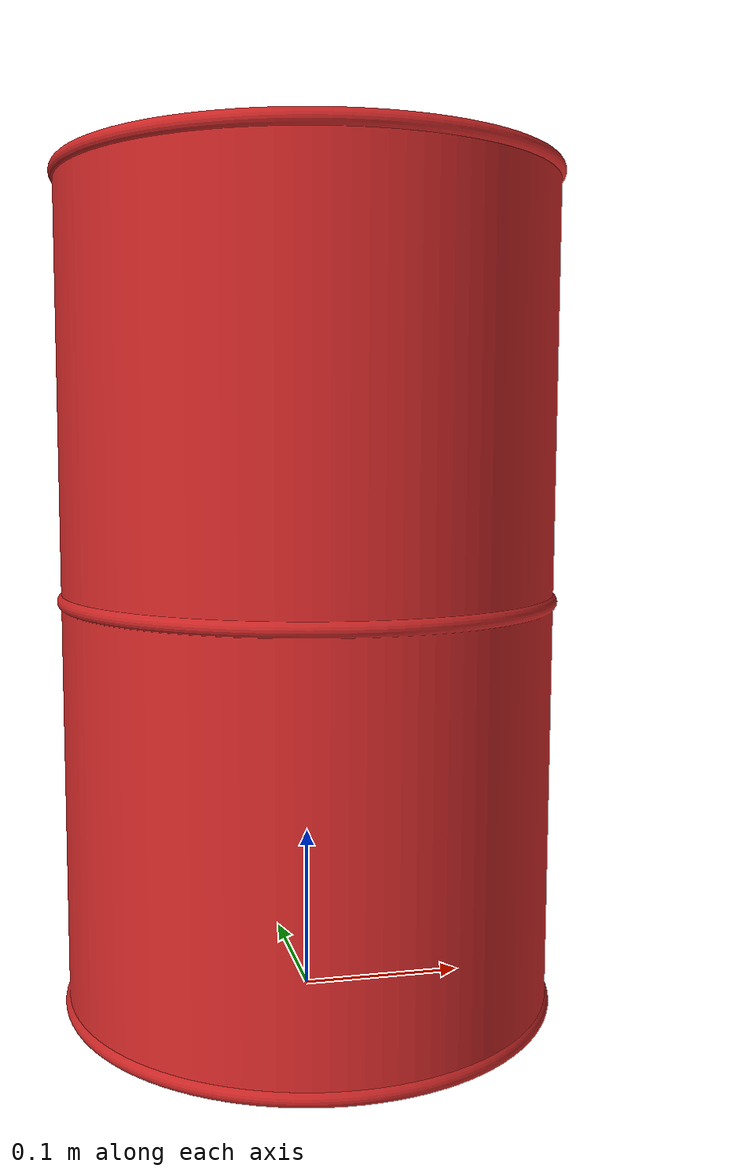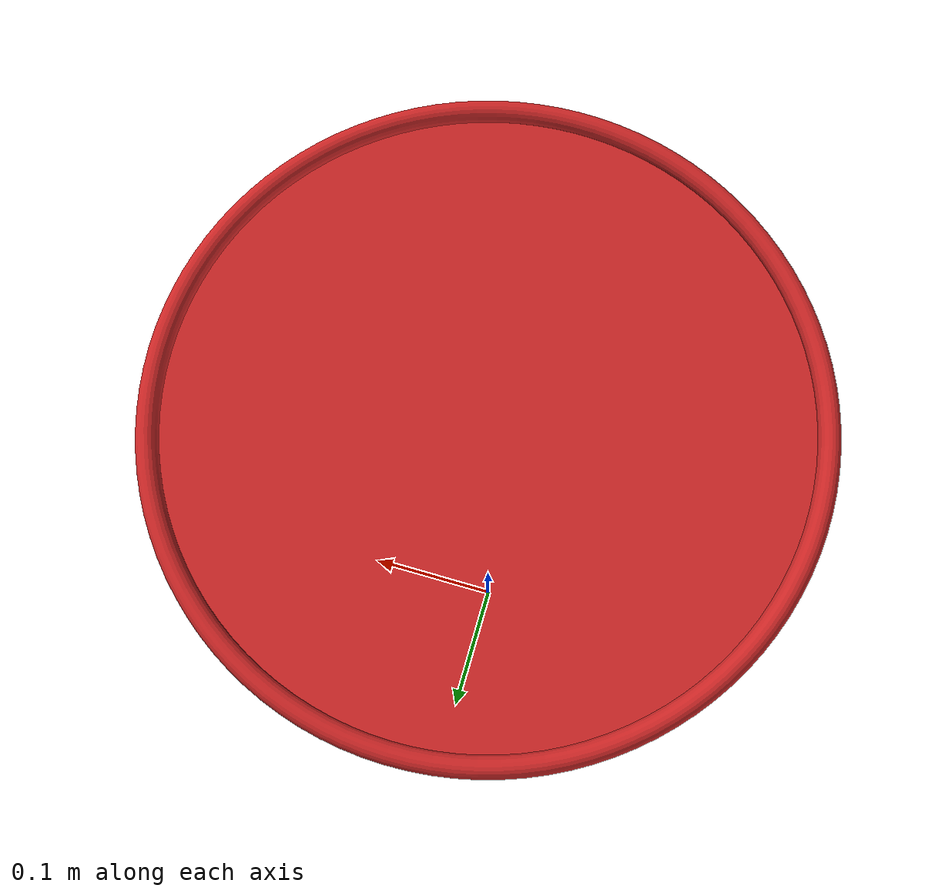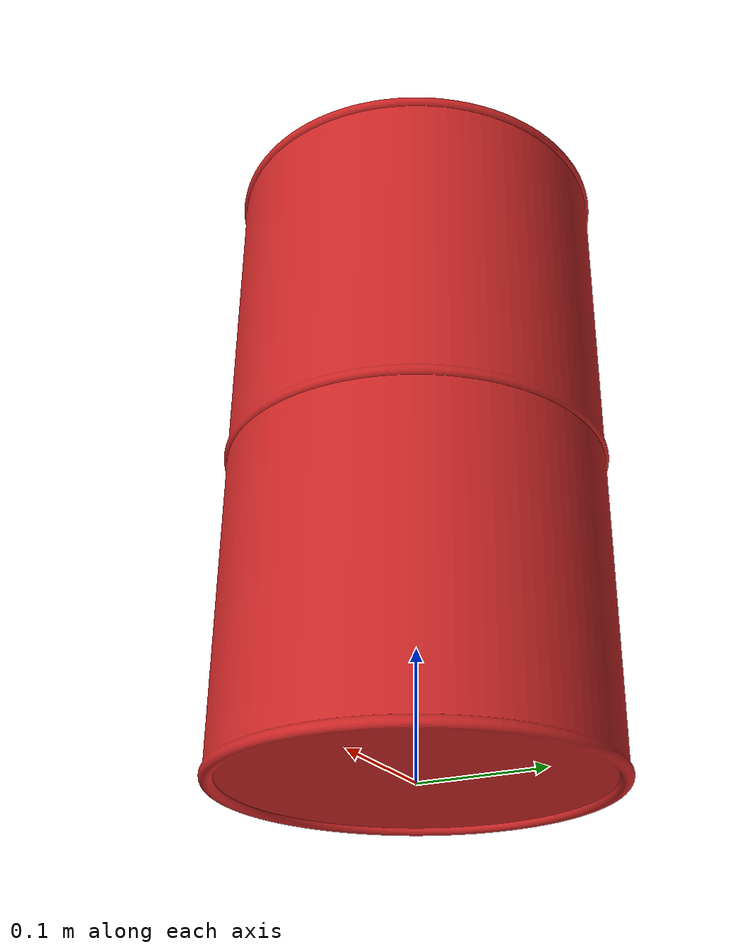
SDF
<?xml version="1.0" ?>
<sdf version="1.6">
    <model name="barrel">
      <pose>0 0 0 0 0 0</pose>
      <static>false</static>
      <link name="body">
        <inertial>
          <mass>0.1</mass>
          <inertia>
            <ixx>0.002645833</ixx>
            <ixy>0.0</ixy>
            <ixz>0.0</ixz>
            <iyy>0.002645833</iyy>
            <iyz>0.0</iyz>
            <izz>0.001125</izz>
          </inertia>
        </inertial>
        <visual name="visual">
          <geometry>
            <mesh>
              <uri>model://meshes/barrel_visual.stl</uri>
              <scale>0.005 0.005 0.005</scale>
            </mesh>
          </geometry>
          <material>
            <script>
              <uri>model://materials/assessment_materials.material</uri>
              <name>red_outlined</name>
            </script>
          </material>
        </visual>
        <collision name="visual">
          <geometry>
            <mesh>
              <uri>model://meshes/barrel_collision.stl</uri>
              <scale>0.005 0.005 0.005</scale>
            </mesh>
          </geometry>
          <friction>
            <torsional>
                <coefficient>0</coefficient>
                <patch_radius>0.1</patch_radius>
                <ode>
                    <slip>100</slip>
                </ode>
                </torsional>
            <ode>
                <mu>0.5</mu>
                <mu2>0.5</mu2>
                <slip1>10</slip1>
                <slip2>10</slip2>
            </ode>
          </friction>
        </collision>
      </link>
    </model>
</sdf>
